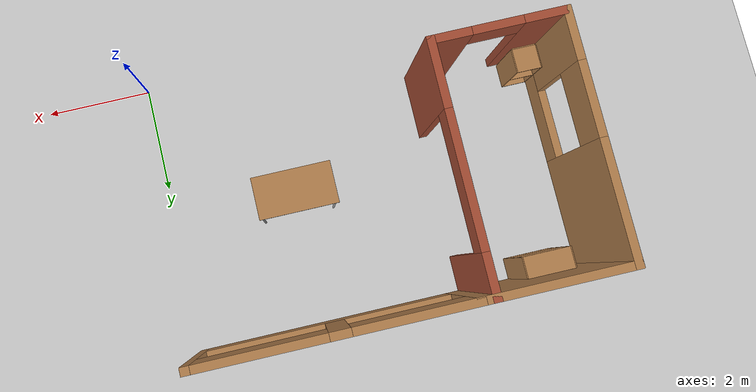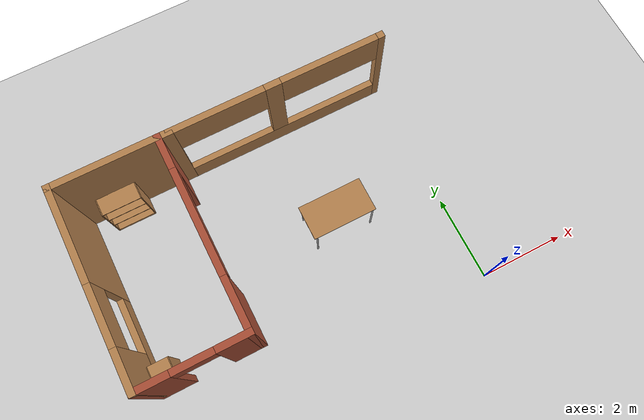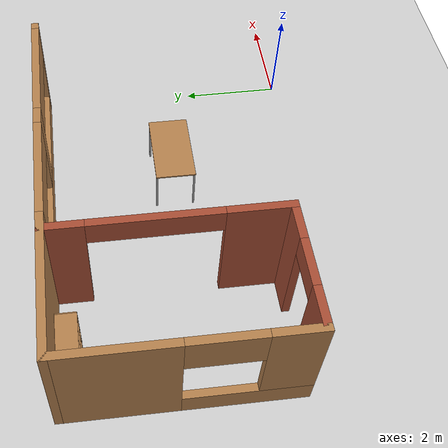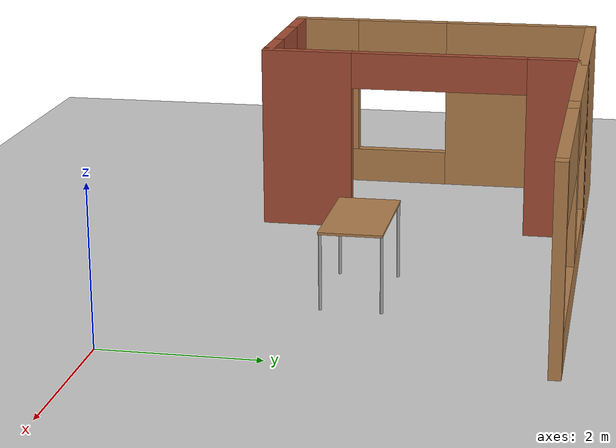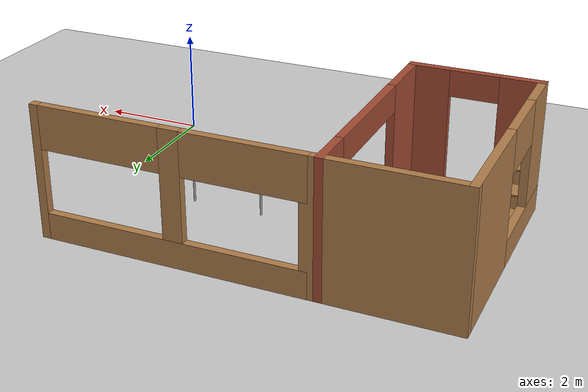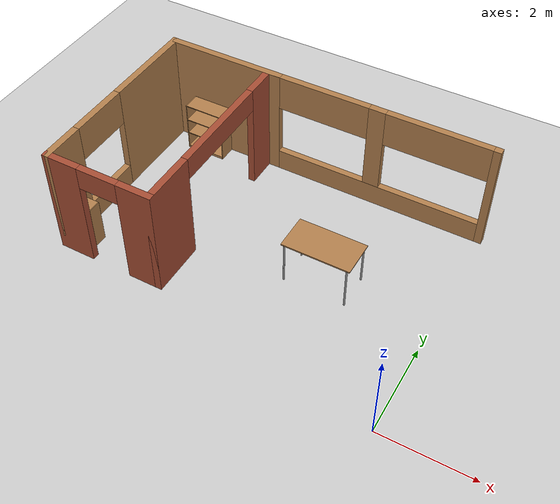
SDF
<sdf version="1.6">
 <world name="default">
  <model name="ground_plane">
   <static>1</static>
   <link name="link">
    <collision name="collision">
     <geometry><plane><normal>0 0 1</normal><size>100 100</size></plane></geometry>
     <surface>
      <contact><collide_bitmask>65535</collide_bitmask></contact>
      <friction><ode><mu>100</mu><mu2>50</mu2></ode></friction>
     </surface>
    </collision>
    <visual name="visual">
     <cast_shadows>0</cast_shadows>
     <geometry><plane><normal>0 0 1</normal><size>100 100</size></plane></geometry>
     <material>
      <script><uri>file://media/materials/scripts/gazebo.material</uri><name>Gazebo/Grey</name></script>
     </material>
    </visual>
   </link>
  </model>
  <model name="turtlebot3_house">
   <pose>0.006915 0.007382 0 0 -0 0</pose>
   <link name="Wall_83">
    <pose>-2.475 5.275 0 0 -0 3.14159</pose>
    <visual name="Wall_83_Visual_2">
     <pose>0.110246 0 1.5 0 -0 0</pose>
     <geometry><box><size>0.37052 0.15 2</size></box></geometry>
     <material>
      <script><uri>file://media/materials/scripts/gazebo.material</uri><name>Gazebo/Wood</name></script>
      <ambient>1 1 1 1</ambient>
      <diffuse>1 1 1 1</diffuse>
      <specular>0.2 0.2 0.2 1</specular>
      <emissive>0 0 0 1</emissive>
     </material>
    </visual>
    <visual name="Wall_83_Visual_6">
     <pose>1.39775 0 2.1 0 -0 0</pose>
     <geometry><box><size>2.20449 0.15 0.8</size></box></geometry>
     <material>
      <script><uri>file://media/materials/scripts/gazebo.material</uri><name>Gazebo/Wood</name></script>
      <ambient>1 1 1 1</ambient>
      <diffuse>1 1 1 1</diffuse>
      <specular>0.2 0.2 0.2 1</specular>
      <emissive>0 0 0 1</emissive>
     </material>
    </visual>
    <visual name="Wall_83_Visual_3">
     <pose>0.110246 0 1.5 0 -0 0</pose>
     <geometry><box><size>0.37052 0.15 2</size></box></geometry>
     <material>
      <script><uri>file://media/materials/scripts/gazebo.material</uri><name>Gazebo/Wood</name></script>
      <ambient>1 1 1 1</ambient>
      <diffuse>1 1 1 1</diffuse>
      <specular>0.2 0.2 0.2 1</specular>
      <emissive>0 0 0 1</emissive>
     </material>
    </visual>
    <visual name="Wall_83_Visual_1">
     <pose>0.080993 0 0.25 0 -0 0</pose>
     <geometry><box><size>4.83801 0.15 0.5</size></box></geometry>
     <material>
      <script><uri>file://media/materials/scripts/gazebo.material</uri><name>Gazebo/Wood</name></script>
      <ambient>1 1 1 1</ambient>
      <diffuse>1 1 1 1</diffuse>
      <specular>0.2 0.2 0.2 1</specular>
      <emissive>0 0 0 1</emissive>
     </material>
    </visual>
    <visual name="Wall_83_Visual_4">
     <pose>-1.20651 0 2.1 0 -0 0</pose>
     <geometry><box><size>2.263 0.15 0.8</size></box></geometry>
     <material>
      <script><uri>file://media/materials/scripts/gazebo.material</uri><name>Gazebo/Wood</name></script>
      <ambient>1 1 1 1</ambient>
      <diffuse>1 1 1 1</diffuse>
      <specular>0.2 0.2 0.2 1</specular>
      <emissive>0 0 0 1</emissive>
     </material>
    </visual>
    <visual name="Wall_83_Visual_5">
     <pose>1.39775 0 2.1 0 -0 0</pose>
     <geometry><box><size>2.20449 0.15 0.8</size></box></geometry>
     <material>
      <script><uri>file://media/materials/scripts/gazebo.material</uri><name>Gazebo/Wood</name></script>
      <ambient>1 1 1 1</ambient>
      <diffuse>1 1 1 1</diffuse>
      <specular>0.2 0.2 0.2 1</specular>
      <emissive>0 0 0 1</emissive>
     </material>
    </visual>
    <visual name="Wall_83_Visual_0">
     <pose>-2.41901 0 1.25 0 -0 0</pose>
     <geometry><box><size>0.161986 0.15 2.5</size></box></geometry>
     <material>
      <script><uri>file://media/materials/scripts/gazebo.material</uri><name>Gazebo/Wood</name></script>
      <ambient>1 1 1 1</ambient>
      <diffuse>1 1 1 1</diffuse>
      <specular>0.2 0.2 0.2 1</specular>
      <emissive>0 0 0 1</emissive>
     </material>
    </visual>
    <collision name="Wall_83_Collision_4">
     <pose>-1.20651 0 2.1 0 -0 0</pose>
     <geometry><box><size>2.263 0.15 0.8</size></box></geometry>
     <surface>
      <friction>
       <ode><mu>1</mu><mu2>1</mu2><fdir1>0 0 0</fdir1><slip1>0</slip1><slip2>0</slip2></ode>
       <torsional>
        <coefficient>1</coefficient>
        <patch_radius>0</patch_radius>
        <surface_radius>0</surface_radius>
        <use_patch_radius>1</use_patch_radius>
        <ode><slip>0</slip></ode>
       </torsional>
      </friction>
      <bounce><restitution_coefficient>0</restitution_coefficient><threshold>1e+06</threshold></bounce>
      <contact>
       <collide_without_contact>0</collide_without_contact>
       <collide_without_contact_bitmask>1</collide_without_contact_bitmask>
       <collide_bitmask>1</collide_bitmask>
       <ode>
        <soft_cfm>0</soft_cfm>
        <soft_erp>0.2</soft_erp>
        <kp>1e+13</kp>
        <kd>1</kd>
        <max_vel>0.01</max_vel>
        <min_depth>0</min_depth>
       </ode>
       <bullet>
        <split_impulse>1</split_impulse>
        <split_impulse_penetration_threshold>-0.01</split_impulse_penetration_threshold>
        <soft_cfm>0</soft_cfm>
        <soft_erp>0.2</soft_erp>
        <kp>1e+13</kp>
        <kd>1</kd>
       </bullet>
      </contact>
     </surface>
    </collision>
    <collision name="Wall_83_Collision_2">
     <pose>0.110246 0 1.5 0 -0 0</pose>
     <geometry><box><size>0.37052 0.15 2</size></box></geometry>
     <surface>
      <friction>
       <ode><mu>1</mu><mu2>1</mu2><fdir1>0 0 0</fdir1><slip1>0</slip1><slip2>0</slip2></ode>
       <torsional>
        <coefficient>1</coefficient>
        <patch_radius>0</patch_radius>
        <surface_radius>0</surface_radius>
        <use_patch_radius>1</use_patch_radius>
        <ode><slip>0</slip></ode>
       </torsional>
      </friction>
      <bounce><restitution_coefficient>0</restitution_coefficient><threshold>1e+06</threshold></bounce>
      <contact>
       <collide_without_contact>0</collide_without_contact>
       <collide_without_contact_bitmask>1</collide_without_contact_bitmask>
       <collide_bitmask>1</collide_bitmask>
       <ode>
        <soft_cfm>0</soft_cfm>
        <soft_erp>0.2</soft_erp>
        <kp>1e+13</kp>
        <kd>1</kd>
        <max_vel>0.01</max_vel>
        <min_depth>0</min_depth>
       </ode>
       <bullet>
        <split_impulse>1</split_impulse>
        <split_impulse_penetration_threshold>-0.01</split_impulse_penetration_threshold>
        <soft_cfm>0</soft_cfm>
        <soft_erp>0.2</soft_erp>
        <kp>1e+13</kp>
        <kd>1</kd>
       </bullet>
      </contact>
     </surface>
    </collision>
    <collision name="Wall_83_Collision_6">
     <pose>1.39775 0 2.1 0 -0 0</pose>
     <geometry><box><size>2.20449 0.15 0.8</size></box></geometry>
     <surface>
      <friction>
       <ode><mu>1</mu><mu2>1</mu2><fdir1>0 0 0</fdir1><slip1>0</slip1><slip2>0</slip2></ode>
       <torsional>
        <coefficient>1</coefficient>
        <patch_radius>0</patch_radius>
        <surface_radius>0</surface_radius>
        <use_patch_radius>1</use_patch_radius>
        <ode><slip>0</slip></ode>
       </torsional>
      </friction>
      <bounce><restitution_coefficient>0</restitution_coefficient><threshold>1e+06</threshold></bounce>
      <contact>
       <collide_without_contact>0</collide_without_contact>
       <collide_without_contact_bitmask>1</collide_without_contact_bitmask>
       <collide_bitmask>1</collide_bitmask>
       <ode>
        <soft_cfm>0</soft_cfm>
        <soft_erp>0.2</soft_erp>
        <kp>1e+13</kp>
        <kd>1</kd>
        <max_vel>0.01</max_vel>
        <min_depth>0</min_depth>
       </ode>
       <bullet>
        <split_impulse>1</split_impulse>
        <split_impulse_penetration_threshold>-0.01</split_impulse_penetration_threshold>
        <soft_cfm>0</soft_cfm>
        <soft_erp>0.2</soft_erp>
        <kp>1e+13</kp>
        <kd>1</kd>
       </bullet>
      </contact>
     </surface>
    </collision>
    <collision name="Wall_83_Collision_0">
     <pose>-2.41901 0 1.25 0 -0 0</pose>
     <geometry><box><size>0.161986 0.15 2.5</size></box></geometry>
     <surface>
      <friction>
       <ode><mu>1</mu><mu2>1</mu2><fdir1>0 0 0</fdir1><slip1>0</slip1><slip2>0</slip2></ode>
       <torsional>
        <coefficient>1</coefficient>
        <patch_radius>0</patch_radius>
        <surface_radius>0</surface_radius>
        <use_patch_radius>1</use_patch_radius>
        <ode><slip>0</slip></ode>
       </torsional>
      </friction>
      <bounce><restitution_coefficient>0</restitution_coefficient><threshold>1e+06</threshold></bounce>
      <contact>
       <collide_without_contact>0</collide_without_contact>
       <collide_without_contact_bitmask>1</collide_without_contact_bitmask>
       <collide_bitmask>1</collide_bitmask>
       <ode>
        <soft_cfm>0</soft_cfm>
        <soft_erp>0.2</soft_erp>
        <kp>1e+13</kp>
        <kd>1</kd>
        <max_vel>0.01</max_vel>
        <min_depth>0</min_depth>
       </ode>
       <bullet>
        <split_impulse>1</split_impulse>
        <split_impulse_penetration_threshold>-0.01</split_impulse_penetration_threshold>
        <soft_cfm>0</soft_cfm>
        <soft_erp>0.2</soft_erp>
        <kp>1e+13</kp>
        <kd>1</kd>
       </bullet>
      </contact>
     </surface>
    </collision>
    <collision name="Wall_83_Collision_1">
     <pose>0.080993 0 0.25 0 -0 0</pose>
     <geometry><box><size>4.83801 0.15 0.5</size></box></geometry>
     <surface>
      <friction>
       <ode><mu>1</mu><mu2>1</mu2><fdir1>0 0 0</fdir1><slip1>0</slip1><slip2>0</slip2></ode>
       <torsional>
        <coefficient>1</coefficient>
        <patch_radius>0</patch_radius>
        <surface_radius>0</surface_radius>
        <use_patch_radius>1</use_patch_radius>
        <ode><slip>0</slip></ode>
       </torsional>
      </friction>
      <bounce><restitution_coefficient>0</restitution_coefficient><threshold>1e+06</threshold></bounce>
      <contact>
       <collide_without_contact>0</collide_without_contact>
       <collide_without_contact_bitmask>1</collide_without_contact_bitmask>
       <collide_bitmask>1</collide_bitmask>
       <ode>
        <soft_cfm>0</soft_cfm>
        <soft_erp>0.2</soft_erp>
        <kp>1e+13</kp>
        <kd>1</kd>
        <max_vel>0.01</max_vel>
        <min_depth>0</min_depth>
       </ode>
       <bullet>
        <split_impulse>1</split_impulse>
        <split_impulse_penetration_threshold>-0.01</split_impulse_penetration_threshold>
        <soft_cfm>0</soft_cfm>
        <soft_erp>0.2</soft_erp>
        <kp>1e+13</kp>
        <kd>1</kd>
       </bullet>
      </contact>
     </surface>
    </collision>
    <collision name="Wall_83_Collision_3">
     <pose>0.110246 0 1.5 0 -0 0</pose>
     <geometry><box><size>0.37052 0.15 2</size></box></geometry>
     <surface>
      <friction>
       <ode><mu>1</mu><mu2>1</mu2><fdir1>0 0 0</fdir1><slip1>0</slip1><slip2>0</slip2></ode>
       <torsional>
        <coefficient>1</coefficient>
        <patch_radius>0</patch_radius>
        <surface_radius>0</surface_radius>
        <use_patch_radius>1</use_patch_radius>
        <ode><slip>0</slip></ode>
       </torsional>
      </friction>
      <bounce><restitution_coefficient>0</restitution_coefficient><threshold>1e+06</threshold></bounce>
      <contact>
       <collide_without_contact>0</collide_without_contact>
       <collide_without_contact_bitmask>1</collide_without_contact_bitmask>
       <collide_bitmask>1</collide_bitmask>
       <ode>
        <soft_cfm>0</soft_cfm>
        <soft_erp>0.2</soft_erp>
        <kp>1e+13</kp>
        <kd>1</kd>
        <max_vel>0.01</max_vel>
        <min_depth>0</min_depth>
       </ode>
       <bullet>
        <split_impulse>1</split_impulse>
        <split_impulse_penetration_threshold>-0.01</split_impulse_penetration_threshold>
        <soft_cfm>0</soft_cfm>
        <soft_erp>0.2</soft_erp>
        <kp>1e+13</kp>
        <kd>1</kd>
       </bullet>
      </contact>
     </surface>
    </collision>
    <collision name="Wall_83_Collision_5">
     <pose>1.39775 0 2.1 0 -0 0</pose>
     <geometry><box><size>2.20449 0.15 0.8</size></box></geometry>
     <surface>
      <friction>
       <ode><mu>1</mu><mu2>1</mu2><fdir1>0 0 0</fdir1><slip1>0</slip1><slip2>0</slip2></ode>
       <torsional>
        <coefficient>1</coefficient>
        <patch_radius>0</patch_radius>
        <surface_radius>0</surface_radius>
        <use_patch_radius>1</use_patch_radius>
        <ode><slip>0</slip></ode>
       </torsional>
      </friction>
      <bounce><restitution_coefficient>0</restitution_coefficient><threshold>1e+06</threshold></bounce>
      <contact>
       <collide_without_contact>0</collide_without_contact>
       <collide_without_contact_bitmask>1</collide_without_contact_bitmask>
       <collide_bitmask>1</collide_bitmask>
       <ode>
        <soft_cfm>0</soft_cfm>
        <soft_erp>0.2</soft_erp>
        <kp>1e+13</kp>
        <kd>1</kd>
        <max_vel>0.01</max_vel>
        <min_depth>0</min_depth>
       </ode>
       <bullet>
        <split_impulse>1</split_impulse>
        <split_impulse_penetration_threshold>-0.01</split_impulse_penetration_threshold>
        <soft_cfm>0</soft_cfm>
        <soft_erp>0.2</soft_erp>
        <kp>1e+13</kp>
        <kd>1</kd>
       </bullet>
      </contact>
     </surface>
    </collision>
   </link>
   <link name="Wall_84">
    <pose>-6.2 5.275 0 0 -0 3.14159</pose>
    <visual name="Wall_84_Visual">
     <pose>0 0 1.25 0 -0 0</pose>
     <geometry><box><size>2.75 0.15 2.5</size></box></geometry>
     <material>
      <script><uri>file://media/materials/scripts/gazebo.material</uri><name>Gazebo/Wood</name></script>
      <ambient>1 1 1 1</ambient>
      <diffuse>1 1 1 1</diffuse>
      <specular>0.2 0.2 0.2 1</specular>
      <emissive>0 0 0 1</emissive>
     </material>
    </visual>
    <collision name="Wall_84_Collision">
     <pose>0 0 1.25 0 -0 0</pose>
     <geometry><box><size>2.75 0.15 2.5</size></box></geometry>
     <surface>
      <friction>
       <ode><mu>1</mu><mu2>1</mu2><fdir1>0 0 0</fdir1><slip1>0</slip1><slip2>0</slip2></ode>
       <torsional>
        <coefficient>1</coefficient>
        <patch_radius>0</patch_radius>
        <surface_radius>0</surface_radius>
        <use_patch_radius>1</use_patch_radius>
        <ode><slip>0</slip></ode>
       </torsional>
      </friction>
      <bounce><restitution_coefficient>0</restitution_coefficient><threshold>1e+06</threshold></bounce>
      <contact>
       <collide_without_contact>0</collide_without_contact>
       <collide_without_contact_bitmask>1</collide_without_contact_bitmask>
       <collide_bitmask>1</collide_bitmask>
       <ode>
        <soft_cfm>0</soft_cfm>
        <soft_erp>0.2</soft_erp>
        <kp>1e+13</kp>
        <kd>1</kd>
        <max_vel>0.01</max_vel>
        <min_depth>0</min_depth>
       </ode>
       <bullet>
        <split_impulse>1</split_impulse>
        <split_impulse_penetration_threshold>-0.01</split_impulse_penetration_threshold>
        <soft_cfm>0</soft_cfm>
        <soft_erp>0.2</soft_erp>
        <kp>1e+13</kp>
        <kd>1</kd>
       </bullet>
      </contact>
     </surface>
    </collision>
   </link>
   <link name="Wall_85">
    <pose>-7.5 3.1 0 0 0 -1.5708</pose>
    <visual name="Wall_85_Visual_3">
     <pose>0.62212 0 2.1 0 -0 0</pose>
     <geometry><box><size>1.332 0.15 0.8</size></box></geometry>
     <material>
      <script><uri>file://media/materials/scripts/gazebo.material</uri><name>Gazebo/Wood</name></script>
      <ambient>1 1 1 1</ambient>
      <diffuse>1 1 1 1</diffuse>
      <specular>0.2 0.2 0.2 1</specular>
      <emissive>0 0 0 1</emissive>
     </material>
    </visual>
    <visual name="Wall_85_Visual_2">
     <pose>1.76906 0 1.5 0 -0 0</pose>
     <geometry><box><size>0.96188 0.15 2</size></box></geometry>
     <material>
      <script><uri>file://media/materials/scripts/gazebo.material</uri><name>Gazebo/Wood</name></script>
      <ambient>1 1 1 1</ambient>
      <diffuse>1 1 1 1</diffuse>
      <specular>0.2 0.2 0.2 1</specular>
      <emissive>0 0 0 1</emissive>
     </material>
    </visual>
    <visual name="Wall_85_Visual_0">
     <pose>-1.14694 0 1.25 0 -0 0</pose>
     <geometry><box><size>2.20612 0.15 2.5</size></box></geometry>
     <material>
      <script><uri>file://media/materials/scripts/gazebo.material</uri><name>Gazebo/Wood</name></script>
      <ambient>1 1 1 1</ambient>
      <diffuse>1 1 1 1</diffuse>
      <specular>0.2 0.2 0.2 1</specular>
      <emissive>0 0 0 1</emissive>
     </material>
    </visual>
    <visual name="Wall_85_Visual_1">
     <pose>1.10306 0 0.25 0 -0 0</pose>
     <geometry><box><size>2.29388 0.15 0.5</size></box></geometry>
     <material>
      <script><uri>file://media/materials/scripts/gazebo.material</uri><name>Gazebo/Wood</name></script>
      <ambient>1 1 1 1</ambient>
      <diffuse>1 1 1 1</diffuse>
      <specular>0.2 0.2 0.2 1</specular>
      <emissive>0 0 0 1</emissive>
     </material>
    </visual>
    <collision name="Wall_85_Collision_3">
     <pose>0.62212 0 2.1 0 -0 0</pose>
     <geometry><box><size>1.332 0.15 0.8</size></box></geometry>
     <surface>
      <friction>
       <ode><mu>1</mu><mu2>1</mu2><fdir1>0 0 0</fdir1><slip1>0</slip1><slip2>0</slip2></ode>
       <torsional>
        <coefficient>1</coefficient>
        <patch_radius>0</patch_radius>
        <surface_radius>0</surface_radius>
        <use_patch_radius>1</use_patch_radius>
        <ode><slip>0</slip></ode>
       </torsional>
      </friction>
      <bounce><restitution_coefficient>0</restitution_coefficient><threshold>1e+06</threshold></bounce>
      <contact>
       <collide_without_contact>0</collide_without_contact>
       <collide_without_contact_bitmask>1</collide_without_contact_bitmask>
       <collide_bitmask>1</collide_bitmask>
       <ode>
        <soft_cfm>0</soft_cfm>
        <soft_erp>0.2</soft_erp>
        <kp>1e+13</kp>
        <kd>1</kd>
        <max_vel>0.01</max_vel>
        <min_depth>0</min_depth>
       </ode>
       <bullet>
        <split_impulse>1</split_impulse>
        <split_impulse_penetration_threshold>-0.01</split_impulse_penetration_threshold>
        <soft_cfm>0</soft_cfm>
        <soft_erp>0.2</soft_erp>
        <kp>1e+13</kp>
        <kd>1</kd>
       </bullet>
      </contact>
     </surface>
    </collision>
    <collision name="Wall_85_Collision_2">
     <pose>1.76906 0 1.5 0 -0 0</pose>
     <geometry><box><size>0.96188 0.15 2</size></box></geometry>
     <surface>
      <friction>
       <ode><mu>1</mu><mu2>1</mu2><fdir1>0 0 0</fdir1><slip1>0</slip1><slip2>0</slip2></ode>
       <torsional>
        <coefficient>1</coefficient>
        <patch_radius>0</patch_radius>
        <surface_radius>0</surface_radius>
        <use_patch_radius>1</use_patch_radius>
        <ode><slip>0</slip></ode>
       </torsional>
      </friction>
      <bounce><restitution_coefficient>0</restitution_coefficient><threshold>1e+06</threshold></bounce>
      <contact>
       <collide_without_contact>0</collide_without_contact>
       <collide_without_contact_bitmask>1</collide_without_contact_bitmask>
       <collide_bitmask>1</collide_bitmask>
       <ode>
        <soft_cfm>0</soft_cfm>
        <soft_erp>0.2</soft_erp>
        <kp>1e+13</kp>
        <kd>1</kd>
        <max_vel>0.01</max_vel>
        <min_depth>0</min_depth>
       </ode>
       <bullet>
        <split_impulse>1</split_impulse>
        <split_impulse_penetration_threshold>-0.01</split_impulse_penetration_threshold>
        <soft_cfm>0</soft_cfm>
        <soft_erp>0.2</soft_erp>
        <kp>1e+13</kp>
        <kd>1</kd>
       </bullet>
      </contact>
     </surface>
    </collision>
    <collision name="Wall_85_Collision_1">
     <pose>1.10306 0 0.25 0 -0 0</pose>
     <geometry><box><size>2.29388 0.15 0.5</size></box></geometry>
     <surface>
      <friction>
       <ode><mu>1</mu><mu2>1</mu2><fdir1>0 0 0</fdir1><slip1>0</slip1><slip2>0</slip2></ode>
       <torsional>
        <coefficient>1</coefficient>
        <patch_radius>0</patch_radius>
        <surface_radius>0</surface_radius>
        <use_patch_radius>1</use_patch_radius>
        <ode><slip>0</slip></ode>
       </torsional>
      </friction>
      <bounce><restitution_coefficient>0</restitution_coefficient><threshold>1e+06</threshold></bounce>
      <contact>
       <collide_without_contact>0</collide_without_contact>
       <collide_without_contact_bitmask>1</collide_without_contact_bitmask>
       <collide_bitmask>1</collide_bitmask>
       <ode>
        <soft_cfm>0</soft_cfm>
        <soft_erp>0.2</soft_erp>
        <kp>1e+13</kp>
        <kd>1</kd>
        <max_vel>0.01</max_vel>
        <min_depth>0</min_depth>
       </ode>
       <bullet>
        <split_impulse>1</split_impulse>
        <split_impulse_penetration_threshold>-0.01</split_impulse_penetration_threshold>
        <soft_cfm>0</soft_cfm>
        <soft_erp>0.2</soft_erp>
        <kp>1e+13</kp>
        <kd>1</kd>
       </bullet>
      </contact>
     </surface>
    </collision>
    <collision name="Wall_85_Collision_0">
     <pose>-1.14694 0 1.25 0 -0 0</pose>
     <geometry><box><size>2.20612 0.15 2.5</size></box></geometry>
     <surface>
      <friction>
       <ode><mu>1</mu><mu2>1</mu2><fdir1>0 0 0</fdir1><slip1>0</slip1><slip2>0</slip2></ode>
       <torsional>
        <coefficient>1</coefficient>
        <patch_radius>0</patch_radius>
        <surface_radius>0</surface_radius>
        <use_patch_radius>1</use_patch_radius>
        <ode><slip>0</slip></ode>
       </torsional>
      </friction>
      <bounce><restitution_coefficient>0</restitution_coefficient><threshold>1e+06</threshold></bounce>
      <contact>
       <collide_without_contact>0</collide_without_contact>
       <collide_without_contact_bitmask>1</collide_without_contact_bitmask>
       <collide_bitmask>1</collide_bitmask>
       <ode>
        <soft_cfm>0</soft_cfm>
        <soft_erp>0.2</soft_erp>
        <kp>1e+13</kp>
        <kd>1</kd>
        <max_vel>0.01</max_vel>
        <min_depth>0</min_depth>
       </ode>
       <bullet>
        <split_impulse>1</split_impulse>
        <split_impulse_penetration_threshold>-0.01</split_impulse_penetration_threshold>
        <soft_cfm>0</soft_cfm>
        <soft_erp>0.2</soft_erp>
        <kp>1e+13</kp>
        <kd>1</kd>
       </bullet>
      </contact>
     </surface>
    </collision>
   </link>
   <link name="Wall_98">
    <pose>-6.325 0.925 0 0 -0 0</pose>
    <visual name="Wall_98_Visual_2">
     <pose>0.015777 0 2.25 0 -0 0</pose>
     <geometry><box><size>0.9 0.15 0.5</size></box></geometry>
     <material>
      <script><uri>file://media/materials/scripts/gazebo.material</uri><name>Gazebo/Bricks</name></script>
      <ambient>1 1 1 1</ambient>
      <diffuse>1 1 1 1</diffuse>
      <specular>0.2 0.2 0.2 1</specular>
      <emissive>0 0 0 1</emissive>
     </material>
    </visual>
    <visual name="Wall_98_Visual_1">
     <pose>0.857889 0 1.25 0 -0 0</pose>
     <geometry><box><size>0.784223 0.15 2.5</size></box></geometry>
     <material>
      <script><uri>file://media/materials/scripts/gazebo.material</uri><name>Gazebo/Bricks</name></script>
      <ambient>1 1 1 1</ambient>
      <diffuse>1 1 1 1</diffuse>
      <specular>0.2 0.2 0.2 1</specular>
      <emissive>0 0 0 1</emissive>
     </material>
    </visual>
    <visual name="Wall_98_Visual_0">
     <pose>-0.842111 0 1.25 0 -0 0</pose>
     <geometry><box><size>0.815777 0.15 2.5</size></box></geometry>
     <material>
      <script><uri>file://media/materials/scripts/gazebo.material</uri><name>Gazebo/Bricks</name></script>
      <ambient>1 1 1 1</ambient>
      <diffuse>1 1 1 1</diffuse>
      <specular>0.2 0.2 0.2 1</specular>
      <emissive>0 0 0 1</emissive>
     </material>
    </visual>
    <collision name="Wall_98_Collision_0">
     <pose>-0.842111 0 1.25 0 -0 0</pose>
     <geometry><box><size>0.815777 0.15 2.5</size></box></geometry>
     <surface>
      <friction>
       <ode><mu>1</mu><mu2>1</mu2><fdir1>0 0 0</fdir1><slip1>0</slip1><slip2>0</slip2></ode>
       <torsional>
        <coefficient>1</coefficient>
        <patch_radius>0</patch_radius>
        <surface_radius>0</surface_radius>
        <use_patch_radius>1</use_patch_radius>
        <ode><slip>0</slip></ode>
       </torsional>
      </friction>
      <bounce><restitution_coefficient>0</restitution_coefficient><threshold>1e+06</threshold></bounce>
      <contact>
       <collide_without_contact>0</collide_without_contact>
       <collide_without_contact_bitmask>1</collide_without_contact_bitmask>
       <collide_bitmask>1</collide_bitmask>
       <ode>
        <soft_cfm>0</soft_cfm>
        <soft_erp>0.2</soft_erp>
        <kp>1e+13</kp>
        <kd>1</kd>
        <max_vel>0.01</max_vel>
        <min_depth>0</min_depth>
       </ode>
       <bullet>
        <split_impulse>1</split_impulse>
        <split_impulse_penetration_threshold>-0.01</split_impulse_penetration_threshold>
        <soft_cfm>0</soft_cfm>
        <soft_erp>0.2</soft_erp>
        <kp>1e+13</kp>
        <kd>1</kd>
       </bullet>
      </contact>
     </surface>
    </collision>
    <collision name="Wall_98_Collision_1">
     <pose>0.857889 0 1.25 0 -0 0</pose>
     <geometry><box><size>0.784223 0.15 2.5</size></box></geometry>
     <surface>
      <friction>
       <ode><mu>1</mu><mu2>1</mu2><fdir1>0 0 0</fdir1><slip1>0</slip1><slip2>0</slip2></ode>
       <torsional>
        <coefficient>1</coefficient>
        <patch_radius>0</patch_radius>
        <surface_radius>0</surface_radius>
        <use_patch_radius>1</use_patch_radius>
        <ode><slip>0</slip></ode>
       </torsional>
      </friction>
      <bounce><restitution_coefficient>0</restitution_coefficient><threshold>1e+06</threshold></bounce>
      <contact>
       <collide_without_contact>0</collide_without_contact>
       <collide_without_contact_bitmask>1</collide_without_contact_bitmask>
       <collide_bitmask>1</collide_bitmask>
       <ode>
        <soft_cfm>0</soft_cfm>
        <soft_erp>0.2</soft_erp>
        <kp>1e+13</kp>
        <kd>1</kd>
        <max_vel>0.01</max_vel>
        <min_depth>0</min_depth>
       </ode>
       <bullet>
        <split_impulse>1</split_impulse>
        <split_impulse_penetration_threshold>-0.01</split_impulse_penetration_threshold>
        <soft_cfm>0</soft_cfm>
        <soft_erp>0.2</soft_erp>
        <kp>1e+13</kp>
        <kd>1</kd>
       </bullet>
      </contact>
     </surface>
    </collision>
    <collision name="Wall_98_Collision_2">
     <pose>0.015777 0 2.25 0 -0 0</pose>
     <geometry><box><size>0.9 0.15 0.5</size></box></geometry>
     <surface>
      <friction>
       <ode><mu>1</mu><mu2>1</mu2><fdir1>0 0 0</fdir1><slip1>0</slip1><slip2>0</slip2></ode>
       <torsional>
        <coefficient>1</coefficient>
        <patch_radius>0</patch_radius>
        <surface_radius>0</surface_radius>
        <use_patch_radius>1</use_patch_radius>
        <ode><slip>0</slip></ode>
       </torsional>
      </friction>
      <bounce><restitution_coefficient>0</restitution_coefficient><threshold>1e+06</threshold></bounce>
      <contact>
       <collide_without_contact>0</collide_without_contact>
       <collide_without_contact_bitmask>1</collide_without_contact_bitmask>
       <collide_bitmask>1</collide_bitmask>
       <ode>
        <soft_cfm>0</soft_cfm>
        <soft_erp>0.2</soft_erp>
        <kp>1e+13</kp>
        <kd>1</kd>
        <max_vel>0.01</max_vel>
        <min_depth>0</min_depth>
       </ode>
       <bullet>
        <split_impulse>1</split_impulse>
        <split_impulse_penetration_threshold>-0.01</split_impulse_penetration_threshold>
        <soft_cfm>0</soft_cfm>
        <soft_erp>0.2</soft_erp>
        <kp>1e+13</kp>
        <kd>1</kd>
       </bullet>
      </contact>
     </surface>
    </collision>
   </link>
   <link name="Wall_99">
    <pose>-5.15 3.1 0 0 -0 1.5708</pose>
    <visual name="Wall_99_Visual_0">
     <pose>-1.62116 0 1.25 0 -0 0</pose>
     <geometry><box><size>1.25768 0.15 2.5</size></box></geometry>
     <material>
      <script><uri>file://media/materials/scripts/gazebo.material</uri><name>Gazebo/Bricks</name></script>
      <ambient>1 1 1 1</ambient>
      <diffuse>1 1 1 1</diffuse>
      <specular>0.2 0.2 0.2 1</specular>
      <emissive>0 0 0 1</emissive>
     </material>
    </visual>
    <visual name="Wall_99_Visual_2">
     <pose>0.215786 0 2.25 0 -0 0</pose>
     <geometry><box><size>2.41621 0.15 0.5</size></box></geometry>
     <material>
      <script><uri>file://media/materials/scripts/gazebo.material</uri><name>Gazebo/Bricks</name></script>
      <ambient>1 1 1 1</ambient>
      <diffuse>1 1 1 1</diffuse>
      <specular>0.2 0.2 0.2 1</specular>
      <emissive>0 0 0 1</emissive>
     </material>
    </visual>
    <visual name="Wall_99_Visual_1">
     <pose>1.83695 0 1.25 0 -0 0</pose>
     <geometry><box><size>0.826108 0.15 2.5</size></box></geometry>
     <material>
      <script><uri>file://media/materials/scripts/gazebo.material</uri><name>Gazebo/Bricks</name></script>
      <ambient>1 1 1 1</ambient>
      <diffuse>1 1 1 1</diffuse>
      <specular>0.2 0.2 0.2 1</specular>
      <emissive>0 0 0 1</emissive>
     </material>
    </visual>
    <collision name="Wall_99_Collision_0">
     <pose>-1.62116 0 1.25 0 -0 0</pose>
     <geometry><box><size>1.25768 0.15 2.5</size></box></geometry>
     <surface>
      <friction>
       <ode><mu>1</mu><mu2>1</mu2><fdir1>0 0 0</fdir1><slip1>0</slip1><slip2>0</slip2></ode>
       <torsional>
        <coefficient>1</coefficient>
        <patch_radius>0</patch_radius>
        <surface_radius>0</surface_radius>
        <use_patch_radius>1</use_patch_radius>
        <ode><slip>0</slip></ode>
       </torsional>
      </friction>
      <bounce><restitution_coefficient>0</restitution_coefficient><threshold>1e+06</threshold></bounce>
      <contact>
       <collide_without_contact>0</collide_without_contact>
       <collide_without_contact_bitmask>1</collide_without_contact_bitmask>
       <collide_bitmask>1</collide_bitmask>
       <ode>
        <soft_cfm>0</soft_cfm>
        <soft_erp>0.2</soft_erp>
        <kp>1e+13</kp>
        <kd>1</kd>
        <max_vel>0.01</max_vel>
        <min_depth>0</min_depth>
       </ode>
       <bullet>
        <split_impulse>1</split_impulse>
        <split_impulse_penetration_threshold>-0.01</split_impulse_penetration_threshold>
        <soft_cfm>0</soft_cfm>
        <soft_erp>0.2</soft_erp>
        <kp>1e+13</kp>
        <kd>1</kd>
       </bullet>
      </contact>
     </surface>
    </collision>
    <collision name="Wall_99_Collision_1">
     <pose>1.83695 0 1.25 0 -0 0</pose>
     <geometry><box><size>0.826108 0.15 2.5</size></box></geometry>
     <surface>
      <friction>
       <ode><mu>1</mu><mu2>1</mu2><fdir1>0 0 0</fdir1><slip1>0</slip1><slip2>0</slip2></ode>
       <torsional>
        <coefficient>1</coefficient>
        <patch_radius>0</patch_radius>
        <surface_radius>0</surface_radius>
        <use_patch_radius>1</use_patch_radius>
        <ode><slip>0</slip></ode>
       </torsional>
      </friction>
      <bounce><restitution_coefficient>0</restitution_coefficient><threshold>1e+06</threshold></bounce>
      <contact>
       <collide_without_contact>0</collide_without_contact>
       <collide_without_contact_bitmask>1</collide_without_contact_bitmask>
       <collide_bitmask>1</collide_bitmask>
       <ode>
        <soft_cfm>0</soft_cfm>
        <soft_erp>0.2</soft_erp>
        <kp>1e+13</kp>
        <kd>1</kd>
        <max_vel>0.01</max_vel>
        <min_depth>0</min_depth>
       </ode>
       <bullet>
        <split_impulse>1</split_impulse>
        <split_impulse_penetration_threshold>-0.01</split_impulse_penetration_threshold>
        <soft_cfm>0</soft_cfm>
        <soft_erp>0.2</soft_erp>
        <kp>1e+13</kp>
        <kd>1</kd>
       </bullet>
      </contact>
     </surface>
    </collision>
    <collision name="Wall_99_Collision_2">
     <pose>0.215786 0 2.25 0 -0 0</pose>
     <geometry><box><size>2.41621 0.15 0.5</size></box></geometry>
     <surface>
      <friction>
       <ode><mu>1</mu><mu2>1</mu2><fdir1>0 0 0</fdir1><slip1>0</slip1><slip2>0</slip2></ode>
       <torsional>
        <coefficient>1</coefficient>
        <patch_radius>0</patch_radius>
        <surface_radius>0</surface_radius>
        <use_patch_radius>1</use_patch_radius>
        <ode><slip>0</slip></ode>
       </torsional>
      </friction>
      <bounce><restitution_coefficient>0</restitution_coefficient><threshold>1e+06</threshold></bounce>
      <contact>
       <collide_without_contact>0</collide_without_contact>
       <collide_without_contact_bitmask>1</collide_without_contact_bitmask>
       <collide_bitmask>1</collide_bitmask>
       <ode>
        <soft_cfm>0</soft_cfm>
        <soft_erp>0.2</soft_erp>
        <kp>1e+13</kp>
        <kd>1</kd>
        <max_vel>0.01</max_vel>
        <min_depth>0</min_depth>
       </ode>
       <bullet>
        <split_impulse>1</split_impulse>
        <split_impulse_penetration_threshold>-0.01</split_impulse_penetration_threshold>
        <soft_cfm>0</soft_cfm>
        <soft_erp>0.2</soft_erp>
        <kp>1e+13</kp>
        <kd>1</kd>
       </bullet>
      </contact>
     </surface>
    </collision>
   </link>
   <model name="bookshelf">
    <static>1</static>
    <link name="link">
     <inertial><mass>1</mass></inertial>
     <collision name="back">
      <pose>0 0.005 0.6 0 -0 0</pose>
      <geometry><box><size>0.9 0.01 1.2</size></box></geometry>
     </collision>
     <visual name="visual1">
      <pose>0 0.005 0.6 0 -0 0</pose>
      <geometry><box><size>0.9 0.01 1.2</size></box></geometry>
      <material>
       <script><uri>file://media/materials/scripts/gazebo.material</uri><name>Gazebo/Wood</name></script>
      </material>
     </visual>
     <collision name="left_side">
      <pose>0.45 -0.195 0.6 0 -0 0</pose>
      <geometry><box><size>0.02 0.4 1.2</size></box></geometry>
     </collision>
     <visual name="visual2">
      <pose>0.45 -0.195 0.6 0 -0 0</pose>
      <geometry><box><size>0.02 0.4 1.2</size></box></geometry>
      <material>
       <script><uri>file://media/materials/scripts/gazebo.material</uri><name>Gazebo/Wood</name></script>
      </material>
     </visual>
     <collision name="right_side">
      <pose>-0.45 -0.195 0.6 0 -0 0</pose>
      <geometry><box><size>0.02 0.4 1.2</size></box></geometry>
     </collision>
     <visual name="visual3">
      <pose>-0.45 -0.195 0.6 0 -0 0</pose>
      <geometry><box><size>0.02 0.4 1.2</size></box></geometry>
      <material>
       <script><uri>file://media/materials/scripts/gazebo.material</uri><name>Gazebo/Wood</name></script>
      </material>
     </visual>
     <collision name="bottom">
      <pose>0 -0.195 0.03 0 -0 0</pose>
      <geometry><box><size>0.88 0.4 0.06</size></box></geometry>
     </collision>
     <visual name="visual4">
      <pose>0 -0.195 0.03 0 -0 0</pose>
      <geometry><box><size>0.88 0.4 0.06</size></box></geometry>
      <material>
       <script><uri>file://media/materials/scripts/gazebo.material</uri><name>Gazebo/Wood</name></script>
      </material>
     </visual>
     <collision name="top">
      <pose>0 -0.195 1.19 0 -0 0</pose>
      <geometry><box><size>0.88 0.4 0.02</size></box></geometry>
     </collision>
     <visual name="visual5">
      <pose>0 -0.195 1.19 0 -0 0</pose>
      <geometry><box><size>0.88 0.4 0.02</size></box></geometry>
      <material>
       <script><uri>file://media/materials/scripts/gazebo.material</uri><name>Gazebo/Wood</name></script>
      </material>
     </visual>
     <collision name="low_shelf">
      <pose>0 -0.195 0.43 0 -0 0</pose>
      <geometry><box><size>0.88 0.4 0.02</size></box></geometry>
     </collision>
     <visual name="visual6">
      <pose>0 -0.195 0.43 0 -0 0</pose>
      <geometry><box><size>0.88 0.4 0.02</size></box></geometry>
      <material>
       <script><uri>file://media/materials/scripts/gazebo.material</uri><name>Gazebo/Wood</name></script>
      </material>
     </visual>
     <collision name="high_shelf">
      <pose>0 -0.195 0.8 0 -0 0</pose>
      <geometry><box><size>0.88 0.4 0.02</size></box></geometry>
     </collision>
     <visual name="visual7">
      <pose>0 -0.195 0.8 0 -0 0</pose>
      <geometry><box><size>0.88 0.4 0.02</size></box></geometry>
      <material>
       <script><uri>file://media/materials/scripts/gazebo.material</uri><name>Gazebo/Wood</name></script>
      </material>
     </visual>
    </link>
    <pose>-6.54397 5.19486 -0 0 -0 0</pose>
   </model>
   <model name="cabinet_1">
    <static>1</static>
    <link name="cabinet_bottom_plate">
     <inertial>
      <pose>0 0 -1 0 -0 0</pose>
      <inertia><ixx>2.05</ixx><ixy>0</ixy><ixz>0</ixz><iyy>2.05</iyy><iyz>0</iyz><izz>2.05</izz></inertia>
      <mass>25</mass>
     </inertial>
     <collision name="cabinet_bottom_plate_geom">
      <pose>0 0 0.01 0 -0 0</pose>
      <geometry><box><size>0.45 0.45 0.02</size></box></geometry>
     </collision>
     <visual name="cabinet_bottom_plate_geom_visual">
      <pose>0 0 0.01 0 -0 0</pose>
      <geometry><box><size>0.45 0.45 0.02</size></box></geometry>
      <material>
       <script><uri>file://media/materials/scripts/gazebo.material</uri><name>Gazebo/Wood</name></script>
      </material>
     </visual>
     <collision name="cabinet_bottom_plate_geom_cabinet_back_plate">
      <pose>0.235 0 0.51 0 -0 0</pose>
      <geometry><box><size>0.02 0.45 1.02</size></box></geometry>
     </collision>
     <visual name="cabinet_bottom_plate_geom_cabinet_back_plate_visual">
      <pose>0.235 0 0.51 0 -0 0</pose>
      <geometry><box><size>0.02 0.45 1.02</size></box></geometry>
      <material>
       <script><uri>file://media/materials/scripts/gazebo.material</uri><name>Gazebo/Wood</name></script>
      </material>
     </visual>
     <collision name="cabinet_bottom_plate_geom_cabinet_left_plate">
      <pose>0 0.235 0.51 0 -0 0</pose>
      <geometry><box><size>0.45 0.02 1.02</size></box></geometry>
     </collision>
     <visual name="cabinet_bottom_plate_geom_cabinet_left_plate_visual">
      <pose>0 0.235 0.51 0 -0 0</pose>
      <geometry><box><size>0.45 0.02 1.02</size></box></geometry>
      <material>
       <script><uri>file://media/materials/scripts/gazebo.material</uri><name>Gazebo/Wood</name></script>
      </material>
     </visual>
     <collision name="cabinet_bottom_plate_geom_cabinet_middle_plate">
      <pose>0 0 0.51 0 -0 0</pose>
      <geometry><box><size>0.45 0.45 0.02</size></box></geometry>
     </collision>
     <visual name="cabinet_bottom_plate_geom_cabinet_middle_plate_visual">
      <pose>0 0 0.51 0 -0 0</pose>
      <geometry><box><size>0.45 0.45 0.02</size></box></geometry>
      <material>
       <script><uri>file://media/materials/scripts/gazebo.material</uri><name>Gazebo/Wood</name></script>
      </material>
     </visual>
     <collision name="cabinet_bottom_plate_geom_cabinet_right_plate">
      <pose>0 -0.235 0.51 0 -0 0</pose>
      <geometry><box><size>0.45 0.02 1.02</size></box></geometry>
     </collision>
     <visual name="cabinet_bottom_plate_geom_cabinet_right_plate_visual">
      <pose>0 -0.235 0.51 0 -0 0</pose>
      <geometry><box><size>0.45 0.02 1.02</size></box></geometry>
      <material>
       <script><uri>file://media/materials/scripts/gazebo.material</uri><name>Gazebo/Wood</name></script>
      </material>
     </visual>
     <collision name="cabinet_bottom_plate_geom_cabinet_top_plate">
      <pose>0 0 1.01 0 -0 0</pose>
      <geometry><box><size>0.45 0.45 0.02</size></box></geometry>
     </collision>
     <visual name="cabinet_bottom_plate_geom_cabinet_top_plate_visual">
      <pose>0 0 1.01 0 -0 0</pose>
      <geometry><box><size>0.45 0.45 0.02</size></box></geometry>
      <material>
       <script><uri>file://media/materials/scripts/gazebo.material</uri><name>Gazebo/Wood</name></script>
      </material>
     </visual>
    </link>
    <pose>-7.18363 1.24799 0 0 0 -1.5708</pose>
   </model>
   <static>1</static>
  </model>
  <model name="table_0">
   <static>1</static>
   <link name="link">
    <collision name="surface">
     <pose>0 0 1 0 -0 0</pose>
     <geometry><box><size>1.5 0.8 0.03</size></box></geometry>
     <surface><friction><ode><mu>0.6</mu><mu2>0.6</mu2></ode></friction></surface>
    </collision>
    <visual name="visual1">
     <pose>0 0 1 0 -0 0</pose>
     <geometry><box><size>1.5 0.8 0.03</size></box></geometry>
     <material>
      <script><uri>file://media/materials/scripts/gazebo.material</uri><name>Gazebo/Wood</name></script>
     </material>
    </visual>
    <collision name="front_left_leg">
     <pose>0.68 0.38 0.5 0 -0 0</pose>
     <geometry><cylinder><radius>0.02</radius><length>1</length></cylinder></geometry>
    </collision>
    <visual name="front_left_leg">
     <pose>0.68 0.38 0.5 0 -0 0</pose>
     <geometry><cylinder><radius>0.02</radius><length>1</length></cylinder></geometry>
     <material>
      <script><uri>file://media/materials/scripts/gazebo.material</uri><name>Gazebo/Grey</name></script>
     </material>
    </visual>
    <collision name="front_right_leg">
     <pose>0.68 -0.38 0.5 0 -0 0</pose>
     <geometry><cylinder><radius>0.02</radius><length>1</length></cylinder></geometry>
    </collision>
    <visual name="front_right_leg">
     <pose>0.68 -0.38 0.5 0 -0 0</pose>
     <geometry><cylinder><radius>0.02</radius><length>1</length></cylinder></geometry>
     <material>
      <script><uri>file://media/materials/scripts/gazebo.material</uri><name>Gazebo/Grey</name></script>
     </material>
    </visual>
    <collision name="back_right_leg">
     <pose>-0.68 -0.38 0.5 0 -0 0</pose>
     <geometry><cylinder><radius>0.02</radius><length>1</length></cylinder></geometry>
    </collision>
    <visual name="back_right_leg">
     <pose>-0.68 -0.38 0.5 0 -0 0</pose>
     <geometry><cylinder><radius>0.02</radius><length>1</length></cylinder></geometry>
     <material>
      <script><uri>file://media/materials/scripts/gazebo.material</uri><name>Gazebo/Grey</name></script>
     </material>
    </visual>
    <collision name="back_left_leg">
     <pose>-0.68 0.38 0.5 0 -0 0</pose>
     <geometry><cylinder><radius>0.02</radius><length>1</length></cylinder></geometry>
    </collision>
    <visual name="back_left_leg">
     <pose>-0.68 0.38 0.5 0 -0 0</pose>
     <geometry><cylinder><radius>0.02</radius><length>1</length></cylinder></geometry>
     <material>
      <script><uri>file://media/materials/scripts/gazebo.material</uri><name>Gazebo/Grey</name></script>
     </material>
    </visual>
   </link>
   <pose>-2.401 2.69763 0 0 -0 0</pose>
  </model>
 </world>
</sdf>
